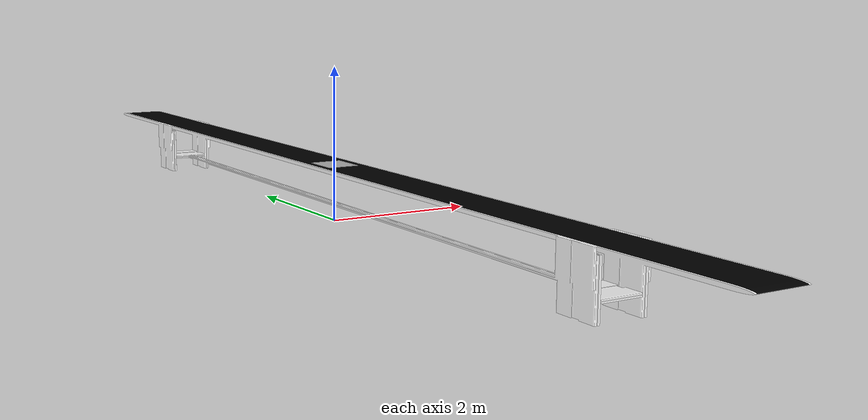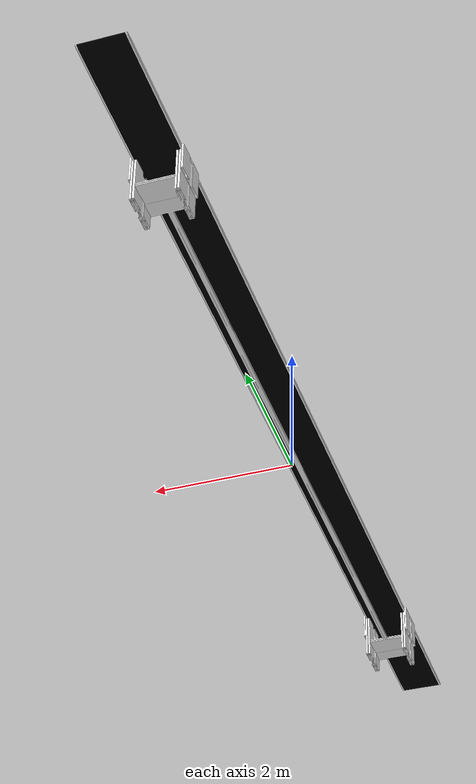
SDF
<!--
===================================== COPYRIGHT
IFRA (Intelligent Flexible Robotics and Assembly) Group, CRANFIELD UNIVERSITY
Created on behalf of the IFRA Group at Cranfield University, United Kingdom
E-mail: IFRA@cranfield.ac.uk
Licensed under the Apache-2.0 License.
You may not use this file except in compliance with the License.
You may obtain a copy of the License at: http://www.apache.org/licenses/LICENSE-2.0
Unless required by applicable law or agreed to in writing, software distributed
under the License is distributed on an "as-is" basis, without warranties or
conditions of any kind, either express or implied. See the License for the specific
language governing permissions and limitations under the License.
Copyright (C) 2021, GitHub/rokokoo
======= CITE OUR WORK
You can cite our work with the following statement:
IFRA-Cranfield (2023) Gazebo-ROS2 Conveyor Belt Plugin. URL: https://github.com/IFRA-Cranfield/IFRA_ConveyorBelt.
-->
<?xml version="1.0" ?>

<sdf version="1.4">
  <model name="conveyor">
      <!-- Fixed belt structure -->
      <link name="belt_visual">
          <pose>0 0 0 0 0 0</pose>
          <visual name="visual">
              <geometry>
                  <mesh>
                      <scale>1.5 12 1</scale>
                      <uri>model://conveyor_belt/meshes/conveyor_belt.dae</uri>
                  </mesh>
              </geometry>
          </visual>
          <collision name="collision">
              <geometry>
                  <mesh>
                      <scale>1.5 12 1</scale>
                      <uri>model://conveyor_belt/meshes/conveyor_belt.dae</uri>
                  </mesh>
              </geometry>
          </collision>
          <inertial>
              <mass>2000.0</mass>
              <inertia>
                  <ixx>4000.0</ixx>
                  <ixy>0.0</ixy>
                  <ixz>0.0</ixz>
                  <iyy>4000.0</iyy>
                  <iyz>0.0</iyz>
                  <izz>4000.0</izz>
              </inertia>
          </inertial>
      </link>

      <!-- Moving belt surface -->
      <link name="belt_moving">
          <pose>0 0 0.741 0 0 0.0</pose>
          <inertial>
              <mass>200.0</mass>
              <inertia>
                  <ixx>400.0</ixx>
                  <ixy>0.0</ixy>
                  <ixz>0.0</ixz>
                  <iyy>400.0</iyy>
                  <iyz>0.0</iyz>
                  <izz>400.0</izz>
              </inertia>
          </inertial>
          <collision name="belt_collision">
              <geometry>
                  <box>
                      <size>0.425 12 0.00001</size>
                  </box>
              </geometry>
              <surface>
                  <friction>
                      <ode>
                          <mu>100.0</mu>
                          <mu2>100.0</mu2>
                      </ode>
                      <torsional>
                          <coefficient>1000.0</coefficient>
                          <patch_radius>0.1</patch_radius>
                      </torsional>
                  </friction>
              </surface>
          </collision>
          <visual name="belt_visual">
              <geometry>
                  <box>
                      <size>0.425 0.5 0.001</size>
                  </box>
              </geometry>
          </visual>
      </link>

      <!-- Joint connecting the links directly -->
      <joint name="belt_joint" type="prismatic">
          <parent>belt_visual</parent>
          <child>belt_moving</child>
          <axis>
              <xyz>0 1 0</xyz>
              <limit>
                  <lower>0.0</lower>
                  <upper>0.01</upper>
              </limit>
          </axis>
      </joint>

      <joint name="belt_joint" type="prismatic">
        <parent>conveyorbelt_fixed::belt_visual</parent>
        <child>conveyorbelt_moving::belt_moving</child>
        <axis>
            <xyz>0 1 0</xyz>
            <limit>
                <lower>0.0</lower>
                <upper>0.01</upper>
            </limit>
        </axis>
    </joint>

    <plugin name="ros2_conveyorbelt_plugin" filename="libros2_conveyorbelt_plugin.so" >
        <ros>
            <namespace></namespace>
        </ros>
        <max_velocity>1.0</max_velocity>
        <publish_rate>1000</publish_rate>
    </plugin>

  </model>
</sdf>
